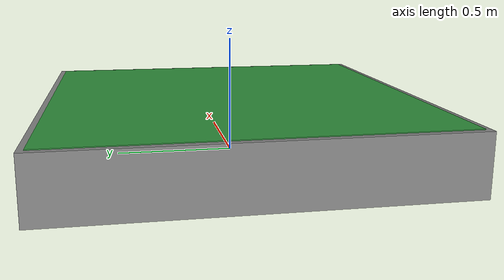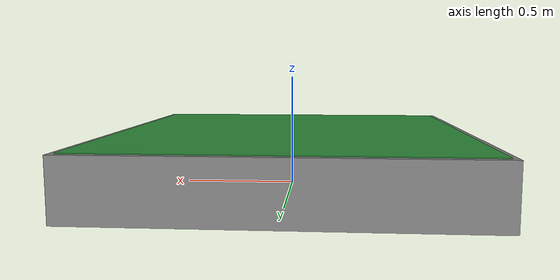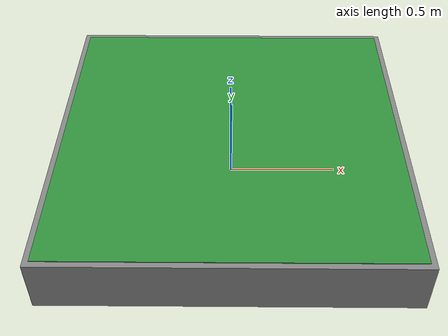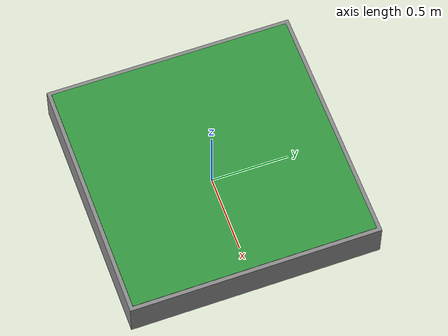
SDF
<?xml version="1.0" ?>
<sdf version="1.9">
  <model name="airpost_pad">
    <static>true</static>
    <link name="link">
      <collision name="c"><pose>0 0 0.125 0 0 0</pose>
        <geometry><box><size>1.6 1.6 0.25</size></box></geometry>
        <surface><friction><ode/></friction></surface></collision>
      <visual name="sides"><pose>0 0 0.125 0 0 0</pose>
        <geometry><box><size>1.6 1.6 0.25</size></box></geometry>
        <material><ambient>0.5 0.5 0.5 1</ambient><diffuse>0.55 0.55 0.55 1</diffuse></material></visual>
      <visual name="top"><pose>0 0 0.251 0 0 0</pose>
        <geometry><box><size>1.55 1.55 0.005</size></box></geometry>
        <material><ambient>0.15 0.5 0.2 1</ambient><diffuse>0.2 0.6 0.25 1</diffuse></material></visual>
    </link>
  </model>
</sdf>
